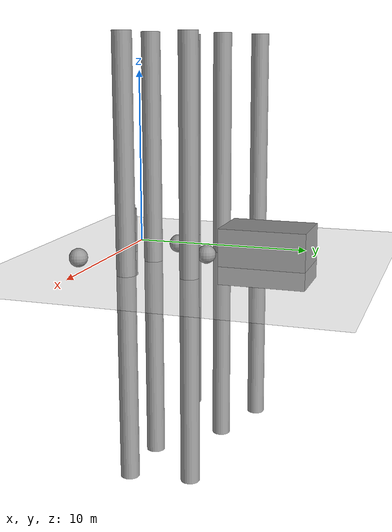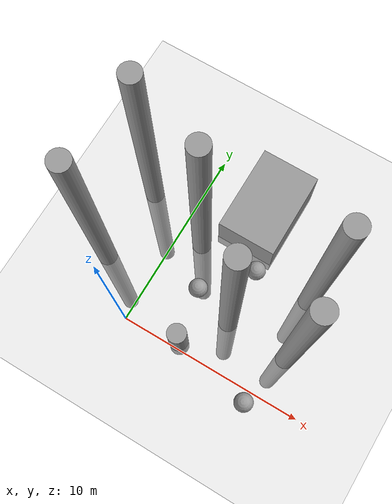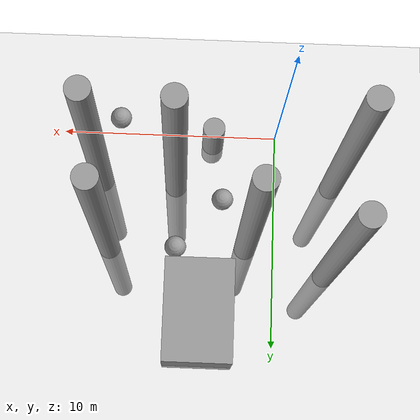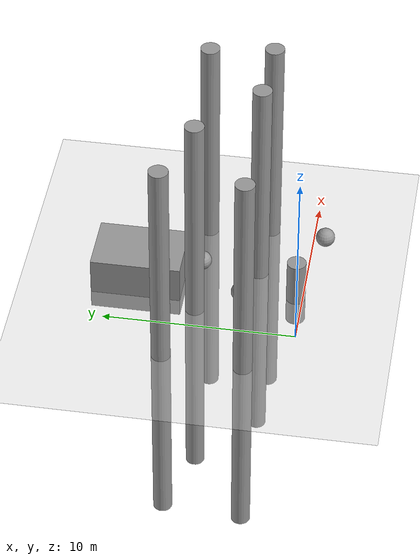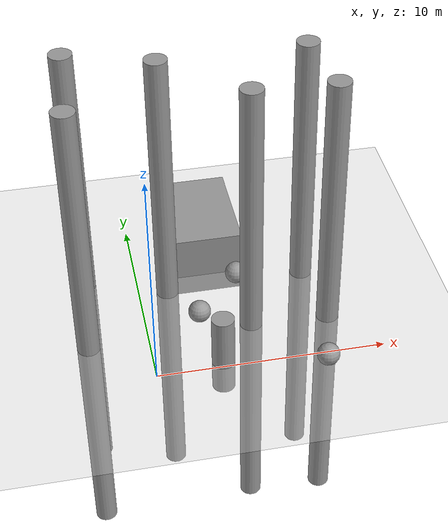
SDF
<sdf version="1.7">
 <world name="default">
  <model name="ground_plane">
   <static>1</static>
   <link name="link">
    <collision name="collision">
     <geometry><plane><normal>0 0 1</normal><size>100 100</size></plane></geometry>
     <surface>
      <contact><collide_bitmask>65535</collide_bitmask></contact>
      <friction><ode><mu>100</mu><mu2>50</mu2></ode></friction>
     </surface>
    </collision>
    <visual name="visual">
     <cast_shadows>0</cast_shadows>
     <geometry><plane><normal>0 0 1</normal><size>100 100</size></plane></geometry>
     <material>
      <script><uri>file://media/materials/scripts/gazebo.material</uri><name>Gazebo/Grey</name></script>
     </material>
    </visual>
   </link>
  </model>
  <light name="sun" type="directional">
   <pose>0 0 10 0 -0 0</pose>
   <diffuse>0.8 0.8 0.8 1</diffuse>
   <specular>0.2 0.2 0.2 1</specular>
   <attenuation>
    <range>1000</range>
    <constant>0.9</constant>
    <linear>0.01</linear>
    <quadratic>0.001</quadratic>
   </attenuation>
   <direction>-0.5 0.1 -0.9</direction>
   <spot><inner_angle>0</inner_angle><outer_angle>0</outer_angle><falloff>0</falloff></spot>
  </light>
  <plugin name="ros_interface_plugin" filename="librotors_gazebo_ros_interface_plugin.so"/>
  <spherical_coordinates>
   <surface_model>EARTH_WGS84</surface_model>
   <latitude_deg>47.3667</latitude_deg>
   <longitude_deg>8.55</longitude_deg>
   <elevation>500</elevation>
   <heading_deg>0</heading_deg>
  </spherical_coordinates>
  <physics type="ode">
   <ode>
    <solver>
     <type>quick</type>
     <iters>1500</iters>
     <sor>1.3</sor>
     <use_dynamic_moi_rescaling>0</use_dynamic_moi_rescaling>
    </solver>
    <constraints>
     <cfm>0</cfm>
     <erp>0.2</erp>
     <contact_max_correcting_vel>100</contact_max_correcting_vel>
     <contact_surface_layer>0.001</contact_surface_layer>
    </constraints>
   </ode>
   <max_step_size>0.001</max_step_size>
   <real_time_factor>1</real_time_factor>
   <real_time_update_rate>1000</real_time_update_rate>
  </physics>
  <gravity>0 0 -9.8</gravity>
  <magnetic_field>6e-06 2.3e-05 -4.2e-05</magnetic_field>
  <atmosphere type="adiabatic"/>
  <scene><ambient>0.4 0.4 0.4 1</ambient><background>0.7 0.7 0.7 1</background><shadows>1</shadows></scene>
  <audio><device>default</device></audio>
  <model name="unit_cylinder_clone_clone_clone_4">
   <pose>2.95376 0.376565 0.5 0 -0 0</pose>
   <link name="link">
    <inertial>
     <mass>1</mass>
     <inertia><ixx>0.145833</ixx><ixy>0</ixy><ixz>0</ixz><iyy>0.145833</iyy><iyz>0</iyz><izz>0.125</izz></inertia>
    </inertial>
    <collision name="collision">
     <geometry><cylinder><radius>0.5</radius><length>3.83852</length></cylinder></geometry>
    </collision>
    <visual name="visual">
     <geometry><cylinder><radius>0.5</radius><length>3.83852</length></cylinder></geometry>
     <material>
      <script><name>Gazebo/Grey</name><uri>file://media/materials/scripts/gazebo.material</uri></script>
     </material>
    </visual>
   </link>
  </model>
  <model name="unit_cylinder_clone_clone_clone_4_clone">
   <pose>4.61149 2.52685 0.5 0 -0 0</pose>
   <link name="link">
    <inertial>
     <mass>1</mass>
     <inertia><ixx>0.145833</ixx><ixy>0</ixy><ixz>0</ixz><iyy>0.145833</iyy><iyz>0</iyz><izz>0.125</izz></inertia>
    </inertial>
    <collision name="collision">
     <geometry><cylinder><radius>0.5</radius><length>23.1108</length></cylinder></geometry>
    </collision>
    <visual name="visual">
     <geometry><cylinder><radius>0.5</radius><length>23.1108</length></cylinder></geometry>
     <material>
      <script><name>Gazebo/Grey</name><uri>file://media/materials/scripts/gazebo.material</uri></script>
     </material>
    </visual>
   </link>
  </model>
  <model name="unit_cylinder_clone_clone_clone_4_clone_0">
   <pose>7.59191 5.59943 0.5 0 -0 0</pose>
   <link name="link">
    <inertial>
     <mass>1</mass>
     <inertia><ixx>0.145833</ixx><ixy>0</ixy><ixz>0</ixz><iyy>0.145833</iyy><iyz>0</iyz><izz>0.125</izz></inertia>
    </inertial>
    <collision name="collision">
     <geometry><cylinder><radius>0.5</radius><length>23.1108</length></cylinder></geometry>
    </collision>
    <visual name="visual">
     <geometry><cylinder><radius>0.5</radius><length>23.1108</length></cylinder></geometry>
     <material>
      <script><name>Gazebo/Grey</name><uri>file://media/materials/scripts/gazebo.material</uri></script>
     </material>
    </visual>
   </link>
  </model>
  <model name="unit_cylinder_clone_clone_clone_4_clone_1">
   <pose>1.30723 5.41078 0.5 0 -0 0</pose>
   <link name="link">
    <inertial>
     <mass>1</mass>
     <inertia><ixx>0.145833</ixx><ixy>0</ixy><ixz>0</ixz><iyy>0.145833</iyy><iyz>0</iyz><izz>0.125</izz></inertia>
    </inertial>
    <collision name="collision">
     <geometry><cylinder><radius>0.5</radius><length>23.1108</length></cylinder></geometry>
    </collision>
    <visual name="visual">
     <geometry><cylinder><radius>0.5</radius><length>23.1108</length></cylinder></geometry>
     <material>
      <script><name>Gazebo/Grey</name><uri>file://media/materials/scripts/gazebo.material</uri></script>
     </material>
    </visual>
   </link>
  </model>
  <model name="unit_cylinder_clone_clone_clone_4_clone_2">
   <pose>-2.63915 2.33996 0.5 0 -0 0</pose>
   <link name="link">
    <inertial>
     <mass>1</mass>
     <inertia><ixx>0.145833</ixx><ixy>0</ixy><ixz>0</ixz><iyy>0.145833</iyy><iyz>0</iyz><izz>0.125</izz></inertia>
    </inertial>
    <collision name="collision">
     <geometry><cylinder><radius>0.5</radius><length>23.1108</length></cylinder></geometry>
    </collision>
    <visual name="visual">
     <geometry><cylinder><radius>0.5</radius><length>23.1108</length></cylinder></geometry>
     <material>
      <script><name>Gazebo/Grey</name><uri>file://media/materials/scripts/gazebo.material</uri></script>
     </material>
    </visual>
   </link>
  </model>
  <model name="unit_cylinder_clone_clone_clone_4_clone_3">
   <pose>-2.34713 6.57266 0.5 0 -0 0</pose>
   <link name="link">
    <inertial>
     <mass>1</mass>
     <inertia><ixx>0.145833</ixx><ixy>0</ixy><ixz>0</ixz><iyy>0.145833</iyy><iyz>0</iyz><izz>0.125</izz></inertia>
    </inertial>
    <collision name="collision">
     <geometry><cylinder><radius>0.5</radius><length>23.1108</length></cylinder></geometry>
    </collision>
    <visual name="visual">
     <geometry><cylinder><radius>0.5</radius><length>23.1108</length></cylinder></geometry>
     <material>
      <script><name>Gazebo/Grey</name><uri>file://media/materials/scripts/gazebo.material</uri></script>
     </material>
    </visual>
   </link>
  </model>
  <model name="unit_cylinder_clone_clone_clone_4_clone_4">
   <pose>8.05485 2.3779 0.5 0 -0 0</pose>
   <link name="link">
    <inertial>
     <mass>1</mass>
     <inertia><ixx>0.145833</ixx><ixy>0</ixy><ixz>0</ixz><iyy>0.145833</iyy><iyz>0</iyz><izz>0.125</izz></inertia>
    </inertial>
    <collision name="collision">
     <geometry><cylinder><radius>0.5</radius><length>23.1108</length></cylinder></geometry>
    </collision>
    <visual name="visual">
     <geometry><cylinder><radius>0.5</radius><length>23.1108</length></cylinder></geometry>
     <material>
      <script><name>Gazebo/Grey</name><uri>file://media/materials/scripts/gazebo.material</uri></script>
     </material>
    </visual>
   </link>
  </model>
  <model name="unit_box">
   <pose>3.37699 8.61373 0.5 0 -0 0</pose>
   <link name="link">
    <inertial>
     <mass>1</mass>
     <inertia>
      <ixx>0.166667</ixx>
      <ixy>0</ixy>
      <ixz>0</ixz>
      <iyy>0.166667</iyy>
      <iyz>0</iyz>
      <izz>0.166667</izz>
     </inertia>
    </inertial>
    <collision name="collision"><geometry><box><size>3.14054 4.67173 3.01097</size></box></geometry></collision>
    <visual name="visual">
     <geometry><box><size>3.14054 4.67173 3.01097</size></box></geometry>
     <material>
      <script><name>Gazebo/Grey</name><uri>file://media/materials/scripts/gazebo.material</uri></script>
     </material>
    </visual>
   </link>
  </model>
  <model name="unit_sphere">
   <pose>2.42434 3.19244 0.5 0 -0 0</pose>
   <link name="link">
    <inertial>
     <mass>1</mass>
     <inertia><ixx>0.1</ixx><ixy>0</ixy><ixz>0</ixz><iyy>0.1</iyy><iyz>0</iyz><izz>0.1</izz></inertia>
    </inertial>
    <collision name="collision"><geometry><sphere><radius>0.5</radius></sphere></geometry></collision>
    <visual name="visual">
     <geometry><sphere><radius>0.5</radius></sphere></geometry>
     <material>
      <script><name>Gazebo/Grey</name><uri>file://media/materials/scripts/gazebo.material</uri></script>
     </material>
    </visual>
   </link>
  </model>
  <model name="unit_sphere_1">
   <pose>4.52885 5.52434 0.5 0 -0 0</pose>
   <link name="link">
    <inertial>
     <mass>1</mass>
     <inertia><ixx>0.1</ixx><ixy>0</ixy><ixz>0</ixz><iyy>0.1</iyy><iyz>0</iyz><izz>0.1</izz></inertia>
    </inertial>
    <collision name="collision"><geometry><sphere><radius>0.5</radius></sphere></geometry></collision>
    <visual name="visual">
     <geometry><sphere><radius>0.5</radius></sphere></geometry>
     <material>
      <script><name>Gazebo/Grey</name><uri>file://media/materials/scripts/gazebo.material</uri></script>
     </material>
    </visual>
   </link>
  </model>
  <model name="unit_sphere_2">
   <pose>7.33839 -0.624421 0.5 0 -0 0</pose>
   <link name="link">
    <inertial>
     <mass>1</mass>
     <inertia><ixx>0.1</ixx><ixy>0</ixy><ixz>0</ixz><iyy>0.1</iyy><iyz>0</iyz><izz>0.1</izz></inertia>
    </inertial>
    <collision name="collision"><geometry><sphere><radius>0.5</radius></sphere></geometry></collision>
    <visual name="visual">
     <geometry><sphere><radius>0.5</radius></sphere></geometry>
     <material>
      <script><name>Gazebo/Grey</name><uri>file://media/materials/scripts/gazebo.material</uri></script>
     </material>
    </visual>
   </link>
  </model>
 </world>
</sdf>
